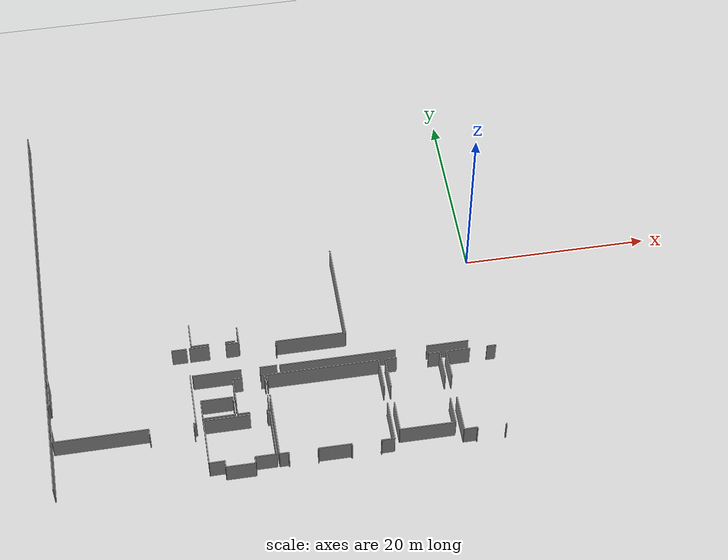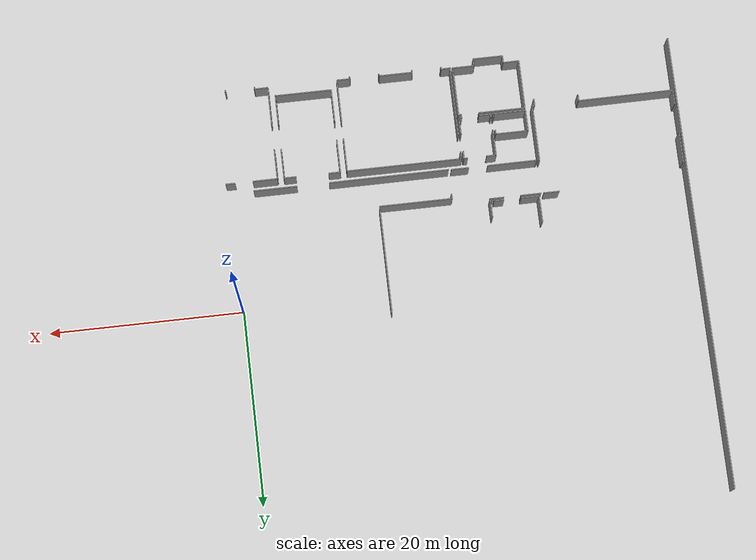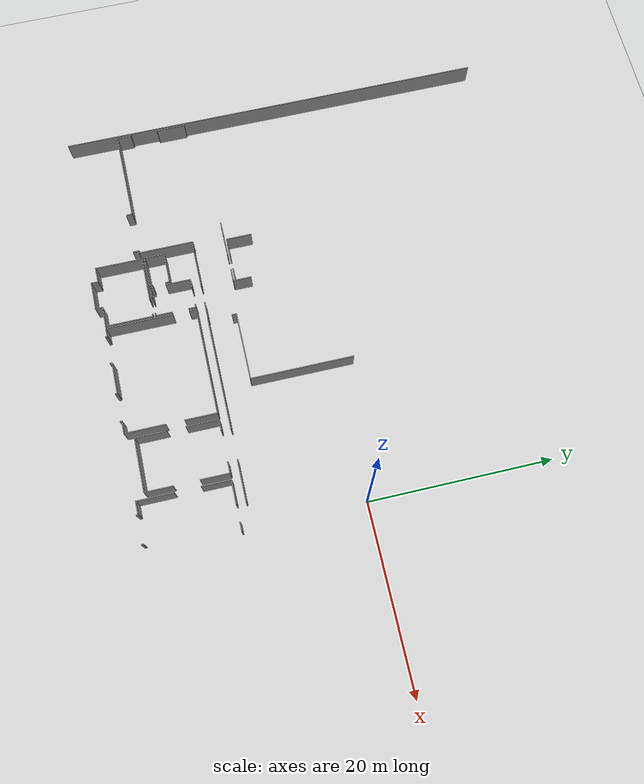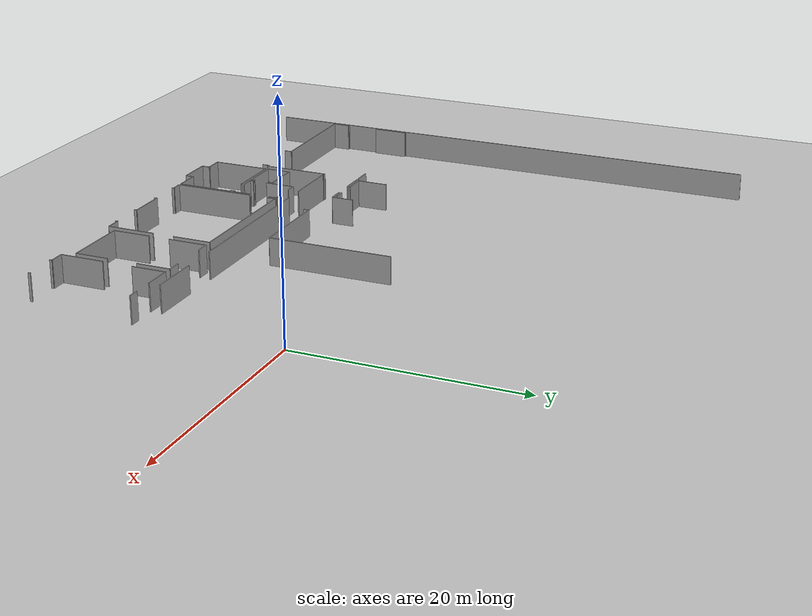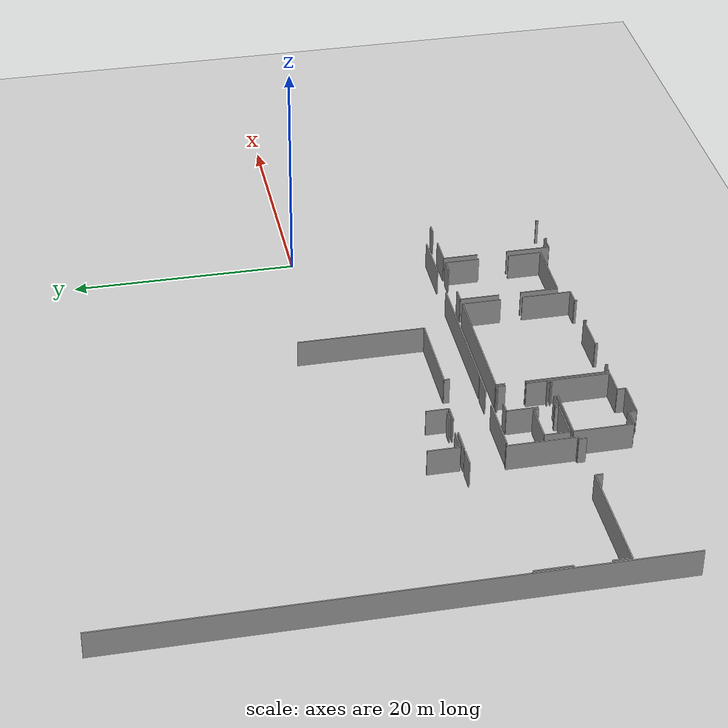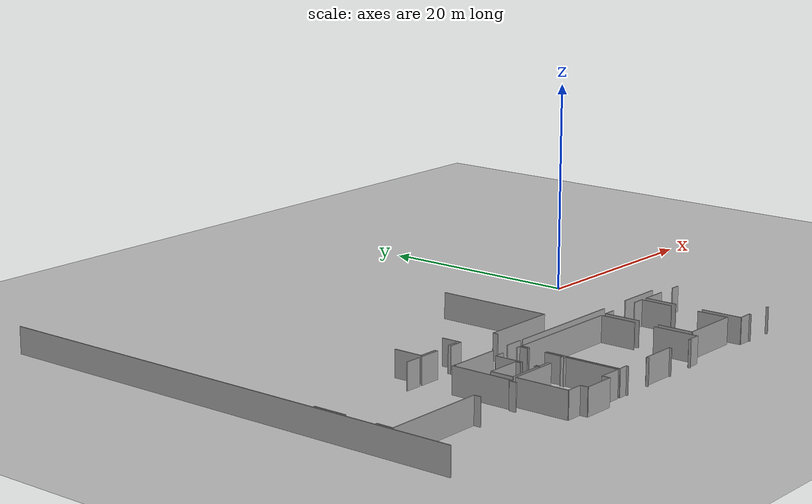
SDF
<sdf version="1.6">
 <world name="default">
  <model name="ground_plane">
   <static>1</static>
   <link name="link">
    <collision name="collision">
     <geometry><plane><normal>0 0 1</normal><size>100 100</size></plane></geometry>
     <surface><friction><ode><mu>100</mu><mu2>50</mu2></ode></friction></surface>
    </collision>
    <visual name="visual">
     <cast_shadows>0</cast_shadows>
     <geometry><plane><normal>0 0 1</normal><size>100 100</size></plane></geometry>
     <material>
      <script><uri>file://media/materials/scripts/gazebo.material</uri><name>Gazebo/Grey</name></script>
     </material>
    </visual>
   </link>
  </model>
  <model name="50045229">
   <static>1</static>
   <link name="Wall_150">
    <collision name="Wall_150_Collision">
     <geometry><box><size>1.54526647121 0.1 2.5</size></box></geometry>
     <pose>0.772633235604 0 1.25 0 0 0</pose>
    </collision>
    <visual name="Wall_150_Visual">
     <pose>0.772633235604 0 1.25 0 0 0</pose>
     <geometry><box><size>1.54526647121 0.1 2.5</size></box></geometry>
     <material>
      <script><uri>file://media/materials/scripts/gazebo.material</uri><name>Gazebo/Grey</name></script>
      <ambient>1 1 1 1</ambient>
     </material>
    </visual>
    <pose>0.24153117821 -41.7352676135 0 0 0 1.57079632679</pose>
   </link>
   <link name="Wall_151">
    <collision name="Wall_151_Collision">
     <geometry><box><size>0.214243105002 0.1 2.5</size></box></geometry>
     <pose>0.107121552501 0 1.25 0 0 0</pose>
    </collision>
    <visual name="Wall_151_Visual">
     <pose>0.107121552501 0 1.25 0 0 0</pose>
     <geometry><box><size>0.214243105002 0.1 2.5</size></box></geometry>
     <material>
      <script><uri>file://media/materials/scripts/gazebo.material</uri><name>Gazebo/Grey</name></script>
      <ambient>1 1 1 1</ambient>
     </material>
    </visual>
    <pose>0.24153117821 -40.1900011423 0 0 0 3.14159265359</pose>
   </link>
   <link name="Wall_152">
    <collision name="Wall_152_Collision">
     <geometry><box><size>0.210308545609 0.1 2.5</size></box></geometry>
     <pose>0.105154272805 0 1.25 0 0 0</pose>
    </collision>
    <visual name="Wall_152_Visual">
     <pose>0.105154272805 0 1.25 0 0 0</pose>
     <geometry><box><size>0.210308545609 0.1 2.5</size></box></geometry>
     <material>
      <script><uri>file://media/materials/scripts/gazebo.material</uri><name>Gazebo/Grey</name></script>
      <ambient>1 1 1 1</ambient>
     </material>
    </visual>
    <pose>0.0272880732082 -37.1182525479 0 0 0 0.0</pose>
   </link>
   <link name="Wall_153">
    <collision name="Wall_153_Collision">
     <geometry><box><size>3.14358603358 0.1 2.5</size></box></geometry>
     <pose>1.57179301679 0 1.25 0 0 0</pose>
    </collision>
    <visual name="Wall_153_Visual">
     <pose>1.57179301679 0 1.25 0 0 0</pose>
     <geometry><box><size>3.14358603358 0.1 2.5</size></box></geometry>
     <material>
      <script><uri>file://media/materials/scripts/gazebo.material</uri><name>Gazebo/Grey</name></script>
      <ambient>1 1 1 1</ambient>
     </material>
    </visual>
    <pose>0.237596618817 -37.1182525479 0 0 0 1.57079632679</pose>
   </link>
   <link name="Wall_154">
    <collision name="Wall_154_Collision">
     <geometry><box><size>0.223508357766 0.1 2.5</size></box></geometry>
     <pose>0.111754178883 0 1.25 0 0 0</pose>
    </collision>
    <visual name="Wall_154_Visual">
     <pose>0.111754178883 0 1.25 0 0 0</pose>
     <geometry><box><size>0.223508357766 0.1 2.5</size></box></geometry>
     <material>
      <script><uri>file://media/materials/scripts/gazebo.material</uri><name>Gazebo/Grey</name></script>
      <ambient>1 1 1 1</ambient>
     </material>
    </visual>
    <pose>0.237596618817 -33.9746665144 0 0 0 3.14159265359</pose>
   </link>
   <link name="Wall_167">
    <collision name="Wall_167_Collision">
     <geometry><box><size>1.60022338144 0.1 2.5</size></box></geometry>
     <pose>0.800111690718 0 1.25 0 0 0</pose>
    </collision>
    <visual name="Wall_167_Visual">
     <pose>0.800111690718 0 1.25 0 0 0</pose>
     <geometry><box><size>1.60022338144 0.1 2.5</size></box></geometry>
     <material>
      <script><uri>file://media/materials/scripts/gazebo.material</uri><name>Gazebo/Grey</name></script>
      <ambient>1 1 1 1</ambient>
     </material>
    </visual>
    <pose>13.3948901496 -32.2849636371 0 0 0 0.0</pose>
   </link>
   <link name="Wall_168">
    <collision name="Wall_168_Collision">
     <geometry><box><size>5.98598789171 0.1 2.5</size></box></geometry>
     <pose>2.99299394586 0 1.25 0 0 0</pose>
    </collision>
    <visual name="Wall_168_Visual">
     <pose>2.99299394586 0 1.25 0 0 0</pose>
     <geometry><box><size>5.98598789171 0.1 2.5</size></box></geometry>
     <material>
      <script><uri>file://media/materials/scripts/gazebo.material</uri><name>Gazebo/Grey</name></script>
      <ambient>1 1 1 1</ambient>
     </material>
    </visual>
    <pose>14.9951135311 -35.7021919303 0 0 0 -1.57079632679</pose>
   </link>
   <link name="Wall_169">
    <collision name="Wall_169_Collision">
     <geometry><box><size>0.253842541472 0.1 2.5</size></box></geometry>
     <pose>0.126921270736 0 1.25 0 0 0</pose>
    </collision>
    <visual name="Wall_169_Visual">
     <pose>0.126921270736 0 1.25 0 0 0</pose>
     <geometry><box><size>0.253842541472 0.1 2.5</size></box></geometry>
     <material>
      <script><uri>file://media/materials/scripts/gazebo.material</uri><name>Gazebo/Grey</name></script>
      <ambient>1 1 1 1</ambient>
     </material>
    </visual>
    <pose>14.9951135311 -41.6881798221 0 0 0 3.14159265359</pose>
   </link>
   <link name="Wall_170">
    <collision name="Wall_170_Collision">
     <geometry><box><size>0.673317341253 0.1 2.5</size></box></geometry>
     <pose>0.336658670627 0 1.25 0 0 0</pose>
    </collision>
    <visual name="Wall_170_Visual">
     <pose>0.336658670627 0 1.25 0 0 0</pose>
     <geometry><box><size>0.673317341253 0.1 2.5</size></box></geometry>
     <material>
      <script><uri>file://media/materials/scripts/gazebo.material</uri><name>Gazebo/Grey</name></script>
      <ambient>1 1 1 1</ambient>
     </material>
    </visual>
    <pose>14.7412709896 -41.6881798221 0 0 0 -1.57079632679</pose>
   </link>
   <link name="Wall_171">
    <collision name="Wall_171_Collision">
     <geometry><box><size>0.684359491807 0.1 2.5</size></box></geometry>
     <pose>0.342179745904 0 1.25 0 0 0</pose>
    </collision>
    <visual name="Wall_171_Visual">
     <pose>0.342179745904 0 1.25 0 0 0</pose>
     <geometry><box><size>0.684359491807 0.1 2.5</size></box></geometry>
     <material>
      <script><uri>file://media/materials/scripts/gazebo.material</uri><name>Gazebo/Grey</name></script>
      <ambient>1 1 1 1</ambient>
     </material>
    </visual>
    <pose>10.1280635622 -42.3614971633 0 0 0 1.57079632679</pose>
   </link>
   <link name="Wall_172">
    <collision name="Wall_172_Collision">
     <geometry><box><size>9.88670327608 0.1 2.5</size></box></geometry>
     <pose>4.94335163804 0 1.25 0 0 0</pose>
    </collision>
    <visual name="Wall_172_Visual">
     <pose>4.94335163804 0 1.25 0 0 0</pose>
     <geometry><box><size>9.88670327608 0.1 2.5</size></box></geometry>
     <material>
      <script><uri>file://media/materials/scripts/gazebo.material</uri><name>Gazebo/Grey</name></script>
      <ambient>1 1 1 1</ambient>
     </material>
    </visual>
    <pose>10.1280635622 -41.6771376715 0 0 0 -3.13571301148</pose>
   </link>
   <link name="Wall_173">
    <collision name="Wall_173_Collision">
     <geometry><box><size>0.0863064641003 0.1 2.5</size></box></geometry>
     <pose>0.0431532320502 0 1.25 0 0 0</pose>
    </collision>
    <visual name="Wall_173_Visual">
     <pose>0.0431532320502 0 1.25 0 0 0</pose>
     <geometry><box><size>0.0863064641003 0.1 2.5</size></box></geometry>
     <material>
      <script><uri>file://media/materials/scripts/gazebo.material</uri><name>Gazebo/Grey</name></script>
      <ambient>1 1 1 1</ambient>
     </material>
    </visual>
    <pose>15.2729441927 -35.8147710975 0 0 0 1.57079632679</pose>
   </link>
   <link name="Wall_174">
    <collision name="Wall_174_Collision">
     <geometry><box><size>2.10765462184 0.1 2.5</size></box></geometry>
     <pose>1.05382731092 0 1.25 0 0 0</pose>
    </collision>
    <visual name="Wall_174_Visual">
     <pose>1.05382731092 0 1.25 0 0 0</pose>
     <geometry><box><size>2.10765462184 0.1 2.5</size></box></geometry>
     <material>
      <script><uri>file://media/materials/scripts/gazebo.material</uri><name>Gazebo/Grey</name></script>
      <ambient>1 1 1 1</ambient>
     </material>
    </visual>
    <pose>15.2729441927 -32.2806483139 0 0 0 0.0</pose>
   </link>
   <link name="Wall_175">
    <collision name="Wall_175_Collision">
     <geometry><box><size>1.41276066456 0.1 2.5</size></box></geometry>
     <pose>0.70638033228 0 1.25 0 0 0</pose>
    </collision>
    <visual name="Wall_175_Visual">
     <pose>0.70638033228 0 1.25 0 0 0</pose>
     <geometry><box><size>1.41276066456 0.1 2.5</size></box></geometry>
     <material>
      <script><uri>file://media/materials/scripts/gazebo.material</uri><name>Gazebo/Grey</name></script>
      <ambient>1 1 1 1</ambient>
     </material>
    </visual>
    <pose>19.1449313991 -32.2806483139 0 0 0 0.0</pose>
   </link>
   <link name="Wall_176">
    <collision name="Wall_176_Collision">
     <geometry><box><size>1.98416022541 0.1 2.5</size></box></geometry>
     <pose>0.992080112706 0 1.25 0 0 0</pose>
    </collision>
    <visual name="Wall_176_Visual">
     <pose>0.992080112706 0 1.25 0 0 0</pose>
     <geometry><box><size>1.98416022541 0.1 2.5</size></box></geometry>
     <material>
      <script><uri>file://media/materials/scripts/gazebo.material</uri><name>Gazebo/Grey</name></script>
      <ambient>1 1 1 1</ambient>
     </material>
    </visual>
    <pose>20.5576920636 -32.2806483139 0 0 0 1.57079632679</pose>
   </link>
   <link name="Wall_180">
    <collision name="Wall_180_Collision">
     <geometry><box><size>1.8246201881 0.1 2.5</size></box></geometry>
     <pose>0.912310094049 0 1.25 0 0 0</pose>
    </collision>
    <visual name="Wall_180_Visual">
     <pose>0.912310094049 0 1.25 0 0 0</pose>
     <geometry><box><size>1.8246201881 0.1 2.5</size></box></geometry>
     <material>
      <script><uri>file://media/materials/scripts/gazebo.material</uri><name>Gazebo/Grey</name></script>
      <ambient>1 1 1 1</ambient>
     </material>
    </visual>
    <pose>24.1518486083 -35.8052520022 0 0 0 3.14159265359</pose>
   </link>
   <link name="Wall_181">
    <collision name="Wall_181_Collision">
     <geometry><box><size>5.09704020029 0.1 2.5</size></box></geometry>
     <pose>2.54852010014 0 1.25 0 0 0</pose>
    </collision>
    <visual name="Wall_181_Visual">
     <pose>2.54852010014 0 1.25 0 0 0</pose>
     <geometry><box><size>5.09704020029 0.1 2.5</size></box></geometry>
     <material>
      <script><uri>file://media/materials/scripts/gazebo.material</uri><name>Gazebo/Grey</name></script>
      <ambient>1 1 1 1</ambient>
     </material>
    </visual>
    <pose>20.3699755042 -35.8052520022 0 0 0 -3.13972507938</pose>
   </link>
   <link name="Wall_182">
    <collision name="Wall_182_Collision">
     <geometry><box><size>2.77018365508 0.1 2.5</size></box></geometry>
     <pose>1.38509182754 0 1.25 0 0 0</pose>
    </collision>
    <visual name="Wall_182_Visual">
     <pose>1.38509182754 0 1.25 0 0 0</pose>
     <geometry><box><size>2.77018365508 0.1 2.5</size></box></geometry>
     <material>
      <script><uri>file://media/materials/scripts/gazebo.material</uri><name>Gazebo/Grey</name></script>
      <ambient>1 1 1 1</ambient>
     </material>
    </visual>
    <pose>15.5248829151 -32.0311210956 0 0 0 1.57079632679</pose>
   </link>
   <link name="Wall_185">
    <collision name="Wall_185_Collision">
     <geometry><box><size>1.02108162307 0.1 2.5</size></box></geometry>
     <pose>0.510540811535 0 1.25 0 0 0</pose>
    </collision>
    <visual name="Wall_185_Visual">
     <pose>0.510540811535 0 1.25 0 0 0</pose>
     <geometry><box><size>1.02108162307 0.1 2.5</size></box></geometry>
     <material>
      <script><uri>file://media/materials/scripts/gazebo.material</uri><name>Gazebo/Grey</name></script>
      <ambient>1 1 1 1</ambient>
     </material>
    </visual>
    <pose>20.1713437155 -32.0240135044 0 0 0 3.14159265359</pose>
   </link>
   <link name="Wall_186">
    <collision name="Wall_186_Collision">
     <geometry><box><size>1.85953712105 0.1 2.5</size></box></geometry>
     <pose>0.929768560524 0 1.25 0 0 0</pose>
    </collision>
    <visual name="Wall_186_Visual">
     <pose>0.929768560524 0 1.25 0 0 0</pose>
     <geometry><box><size>1.85953712105 0.1 2.5</size></box></geometry>
     <material>
      <script><uri>file://media/materials/scripts/gazebo.material</uri><name>Gazebo/Grey</name></script>
      <ambient>1 1 1 1</ambient>
     </material>
    </visual>
    <pose>17.3844064527 -32.0240135044 0 0 0 -3.13777040751</pose>
   </link>
   <link name="Wall_187">
    <collision name="Wall_187_Collision">
     <geometry><box><size>0.33113759535 0.1 2.5</size></box></geometry>
     <pose>0.165568797675 0 1.25 0 0 0</pose>
    </collision>
    <visual name="Wall_187_Visual">
     <pose>0.165568797675 0 1.25 0 0 0</pose>
     <geometry><box><size>0.33113759535 0.1 2.5</size></box></geometry>
     <material>
      <script><uri>file://media/materials/scripts/gazebo.material</uri><name>Gazebo/Grey</name></script>
      <ambient>1 1 1 1</ambient>
     </material>
    </visual>
    <pose>19.3766896394 -41.2467476424 0 0 0 1.57079632679</pose>
   </link>
   <link name="Wall_188">
    <collision name="Wall_188_Collision">
     <geometry><box><size>2.71598827247 0.1 2.5</size></box></geometry>
     <pose>1.35799413624 0 1.25 0 0 0</pose>
    </collision>
    <visual name="Wall_188_Visual">
     <pose>1.35799413624 0 1.25 0 0 0</pose>
     <geometry><box><size>2.71598827247 0.1 2.5</size></box></geometry>
     <material>
      <script><uri>file://media/materials/scripts/gazebo.material</uri><name>Gazebo/Grey</name></script>
      <ambient>1 1 1 1</ambient>
     </material>
    </visual>
    <pose>19.3766896394 -39.5480333549 0 0 0 1.57079632679</pose>
   </link>
   <link name="Wall_189">
    <collision name="Wall_189_Collision">
     <geometry><box><size>0.982751399307 0.1 2.5</size></box></geometry>
     <pose>0.491375699654 0 1.25 0 0 0</pose>
    </collision>
    <visual name="Wall_189_Visual">
     <pose>0.491375699654 0 1.25 0 0 0</pose>
     <geometry><box><size>0.982751399307 0.1 2.5</size></box></geometry>
     <material>
      <script><uri>file://media/materials/scripts/gazebo.material</uri><name>Gazebo/Grey</name></script>
      <ambient>1 1 1 1</ambient>
     </material>
    </visual>
    <pose>19.3766896394 -36.8320450824 0 0 0 0.0</pose>
   </link>
   <link name="Wall_190">
    <collision name="Wall_190_Collision">
     <geometry><box><size>0.383936843976 0.1 2.5</size></box></geometry>
     <pose>0.191968421988 0 1.25 0 0 0</pose>
    </collision>
    <visual name="Wall_190_Visual">
     <pose>0.191968421988 0 1.25 0 0 0</pose>
     <geometry><box><size>0.383936843976 0.1 2.5</size></box></geometry>
     <material>
      <script><uri>file://media/materials/scripts/gazebo.material</uri><name>Gazebo/Grey</name></script>
      <ambient>1 1 1 1</ambient>
     </material>
    </visual>
    <pose>22.3172016398 -36.8320450824 0 0 0 0.0</pose>
   </link>
   <link name="Wall_191">
    <collision name="Wall_191_Collision">
     <geometry><box><size>0.782088870274 0.1 2.5</size></box></geometry>
     <pose>0.391044435137 0 1.25 0 0 0</pose>
    </collision>
    <visual name="Wall_191_Visual">
     <pose>0.391044435137 0 1.25 0 0 0</pose>
     <geometry><box><size>0.782088870274 0.1 2.5</size></box></geometry>
     <material>
      <script><uri>file://media/materials/scripts/gazebo.material</uri><name>Gazebo/Grey</name></script>
      <ambient>1 1 1 1</ambient>
     </material>
    </visual>
    <pose>22.7011384838 -36.8320450824 0 0 0 -1.57079632679</pose>
   </link>
   <link name="Wall_192">
    <collision name="Wall_192_Collision">
     <geometry><box><size>1.81497417152 0.1 2.5</size></box></geometry>
     <pose>0.907487085761 0 1.25 0 0 0</pose>
    </collision>
    <visual name="Wall_192_Visual">
     <pose>0.907487085761 0 1.25 0 0 0</pose>
     <geometry><box><size>1.81497417152 0.1 2.5</size></box></geometry>
     <material>
      <script><uri>file://media/materials/scripts/gazebo.material</uri><name>Gazebo/Grey</name></script>
      <ambient>1 1 1 1</ambient>
     </material>
    </visual>
    <pose>22.7011384838 -39.4157813908 0 0 0 -1.57079632679</pose>
   </link>
   <link name="Wall_193">
    <collision name="Wall_193_Collision">
     <geometry><box><size>0.323014634023 0.1 2.5</size></box></geometry>
     <pose>0.161507317011 0 1.25 0 0 0</pose>
    </collision>
    <visual name="Wall_193_Visual">
     <pose>0.161507317011 0 1.25 0 0 0</pose>
     <geometry><box><size>0.323014634023 0.1 2.5</size></box></geometry>
     <material>
      <script><uri>file://media/materials/scripts/gazebo.material</uri><name>Gazebo/Grey</name></script>
      <ambient>1 1 1 1</ambient>
     </material>
    </visual>
    <pose>22.7011384838 -41.2307555623 0 0 0 3.14159265359</pose>
   </link>
   <link name="Wall_194">
    <collision name="Wall_194_Collision">
     <geometry><box><size>1.24228141521 0.1 2.5</size></box></geometry>
     <pose>0.621140707606 0 1.25 0 0 0</pose>
    </collision>
    <visual name="Wall_194_Visual">
     <pose>0.621140707606 0 1.25 0 0 0</pose>
     <geometry><box><size>1.24228141521 0.1 2.5</size></box></geometry>
     <material>
      <script><uri>file://media/materials/scripts/gazebo.material</uri><name>Gazebo/Grey</name></script>
      <ambient>1 1 1 1</ambient>
     </material>
    </visual>
    <pose>20.6188681161 -41.2307555623 0 0 0 -3.1287191439</pose>
   </link>
   <link name="Wall_195">
    <collision name="Wall_195_Collision">
     <geometry><box><size>5.1403114648 0.1 2.5</size></box></geometry>
     <pose>2.5701557324 0 1.25 0 0 0</pose>
    </collision>
    <visual name="Wall_195_Visual">
     <pose>2.5701557324 0 1.25 0 0 0</pose>
     <geometry><box><size>5.1403114648 0.1 2.5</size></box></geometry>
     <material>
      <script><uri>file://media/materials/scripts/gazebo.material</uri><name>Gazebo/Grey</name></script>
      <ambient>1 1 1 1</ambient>
     </material>
    </visual>
    <pose>15.7782177715 -46.6629859498 0 0 0 1.57079632679</pose>
   </link>
   <link name="Wall_196">
    <collision name="Wall_196_Collision">
     <geometry><box><size>4.83075048547 0.1 2.5</size></box></geometry>
     <pose>2.41537524274 0 1.25 0 0 0</pose>
    </collision>
    <visual name="Wall_196_Visual">
     <pose>2.41537524274 0 1.25 0 0 0</pose>
     <geometry><box><size>4.83075048547 0.1 2.5</size></box></geometry>
     <material>
      <script><uri>file://media/materials/scripts/gazebo.material</uri><name>Gazebo/Grey</name></script>
      <ambient>1 1 1 1</ambient>
     </material>
    </visual>
    <pose>15.7782177715 -41.522674485 0 0 0 0.0</pose>
   </link>
   <link name="Wall_197">
    <collision name="Wall_197_Collision">
     <geometry><box><size>0.306514868827 0.1 2.5</size></box></geometry>
     <pose>0.153257434413 0 1.25 0 0 0</pose>
    </collision>
    <visual name="Wall_197_Visual">
     <pose>0.153257434413 0 1.25 0 0 0</pose>
     <geometry><box><size>0.306514868827 0.1 2.5</size></box></geometry>
     <material>
      <script><uri>file://media/materials/scripts/gazebo.material</uri><name>Gazebo/Grey</name></script>
      <ambient>1 1 1 1</ambient>
     </material>
    </visual>
    <pose>22.4003350722 -41.522674485 0 0 0 0.0</pose>
   </link>
   <link name="Wall_198">
    <collision name="Wall_198_Collision">
     <geometry><box><size>5.12101943165 0.1 2.5</size></box></geometry>
     <pose>2.56050971582 0 1.25 0 0 0</pose>
    </collision>
    <visual name="Wall_198_Visual">
     <pose>2.56050971582 0 1.25 0 0 0</pose>
     <geometry><box><size>5.12101943165 0.1 2.5</size></box></geometry>
     <material>
      <script><uri>file://media/materials/scripts/gazebo.material</uri><name>Gazebo/Grey</name></script>
      <ambient>1 1 1 1</ambient>
     </material>
    </visual>
    <pose>22.706849941 -41.522674485 0 0 0 -1.57079632679</pose>
   </link>
   <link name="Wall_199">
    <collision name="Wall_199_Collision">
     <geometry><box><size>2.2374950818 0.1 2.5</size></box></geometry>
     <pose>1.1187475409 0 1.25 0 0 0</pose>
    </collision>
    <visual name="Wall_199_Visual">
     <pose>1.1187475409 0 1.25 0 0 0</pose>
     <geometry><box><size>2.2374950818 0.1 2.5</size></box></geometry>
     <material>
      <script><uri>file://media/materials/scripts/gazebo.material</uri><name>Gazebo/Grey</name></script>
      <ambient>1 1 1 1</ambient>
     </material>
    </visual>
    <pose>22.706849941 -46.6436939167 0 0 0 3.14159265359</pose>
   </link>
   <link name="Wall_200">
    <collision name="Wall_200_Collision">
     <geometry><box><size>0.739443323307 0.1 2.5</size></box></geometry>
     <pose>0.369721661653 0 1.25 0 0 0</pose>
    </collision>
    <visual name="Wall_200_Visual">
     <pose>0.369721661653 0 1.25 0 0 0</pose>
     <geometry><box><size>0.739443323307 0.1 2.5</size></box></geometry>
     <material>
      <script><uri>file://media/materials/scripts/gazebo.material</uri><name>Gazebo/Grey</name></script>
      <ambient>1 1 1 1</ambient>
     </material>
    </visual>
    <pose>20.4693548592 -46.6436939167 0 0 0 -1.57079632679</pose>
   </link>
   <link name="Wall_201">
    <collision name="Wall_201_Collision">
     <geometry><box><size>3.06819479877 0.1 2.5</size></box></geometry>
     <pose>1.53409739938 0 1.25 0 0 0</pose>
    </collision>
    <visual name="Wall_201_Visual">
     <pose>1.53409739938 0 1.25 0 0 0</pose>
     <geometry><box><size>3.06819479877 0.1 2.5</size></box></geometry>
     <material>
      <script><uri>file://media/materials/scripts/gazebo.material</uri><name>Gazebo/Grey</name></script>
      <ambient>1 1 1 1</ambient>
     </material>
    </visual>
    <pose>20.4693548592 -47.38313724 0 0 0 3.14159265359</pose>
   </link>
   <link name="Wall_202">
    <collision name="Wall_202_Collision">
     <geometry><box><size>0.739443323307 0.1 2.5</size></box></geometry>
     <pose>0.369721661653 0 1.25 0 0 0</pose>
    </collision>
    <visual name="Wall_202_Visual">
     <pose>0.369721661653 0 1.25 0 0 0</pose>
     <geometry><box><size>0.739443323307 0.1 2.5</size></box></geometry>
     <material>
      <script><uri>file://media/materials/scripts/gazebo.material</uri><name>Gazebo/Grey</name></script>
      <ambient>1 1 1 1</ambient>
     </material>
    </visual>
    <pose>17.4011600604 -47.38313724 0 0 0 1.57079632679</pose>
   </link>
   <link name="Wall_203">
    <collision name="Wall_203_Collision">
     <geometry><box><size>1.62305694775 0.1 2.5</size></box></geometry>
     <pose>0.811528473875 0 1.25 0 0 0</pose>
    </collision>
    <visual name="Wall_203_Visual">
     <pose>0.811528473875 0 1.25 0 0 0</pose>
     <geometry><box><size>1.62305694775 0.1 2.5</size></box></geometry>
     <material>
      <script><uri>file://media/materials/scripts/gazebo.material</uri><name>Gazebo/Grey</name></script>
      <ambient>1 1 1 1</ambient>
     </material>
    </visual>
    <pose>17.4011600604 -46.6436939167 0 0 0 -3.12970614063</pose>
   </link>
   <link name="Wall_204">
    <collision name="Wall_204_Collision">
     <geometry><box><size>2.19484953483 0.1 2.5</size></box></geometry>
     <pose>1.09742476742 0 1.25 0 0 0</pose>
    </collision>
    <visual name="Wall_204_Visual">
     <pose>1.09742476742 0 1.25 0 0 0</pose>
     <geometry><box><size>2.19484953483 0.1 2.5</size></box></geometry>
     <material>
      <script><uri>file://media/materials/scripts/gazebo.material</uri><name>Gazebo/Grey</name></script>
      <ambient>1 1 1 1</ambient>
     </material>
    </visual>
    <pose>15.7591795809 -41.2631204864 0 0 0 1.57079632679</pose>
   </link>
   <link name="Wall_205">
    <collision name="Wall_205_Collision">
     <geometry><box><size>3.36227138306 0.1 2.5</size></box></geometry>
     <pose>1.68113569153 0 1.25 0 0 0</pose>
    </collision>
    <visual name="Wall_205_Visual">
     <pose>1.68113569153 0 1.25 0 0 0</pose>
     <geometry><box><size>3.36227138306 0.1 2.5</size></box></geometry>
     <material>
      <script><uri>file://media/materials/scripts/gazebo.material</uri><name>Gazebo/Grey</name></script>
      <ambient>1 1 1 1</ambient>
     </material>
    </visual>
    <pose>15.7591795809 -39.0682709515 0 0 0 0.0</pose>
   </link>
   <link name="Wall_206">
    <collision name="Wall_206_Collision">
     <geometry><box><size>0.470243308076 0.1 2.5</size></box></geometry>
     <pose>0.235121654038 0 1.25 0 0 0</pose>
    </collision>
    <visual name="Wall_206_Visual">
     <pose>0.235121654038 0 1.25 0 0 0</pose>
     <geometry><box><size>0.470243308076 0.1 2.5</size></box></geometry>
     <material>
      <script><uri>file://media/materials/scripts/gazebo.material</uri><name>Gazebo/Grey</name></script>
      <ambient>1 1 1 1</ambient>
     </material>
    </visual>
    <pose>19.121450964 -39.0682709515 0 0 0 -1.57079632679</pose>
   </link>
   <link name="Wall_207">
    <collision name="Wall_207_Collision">
     <geometry><box><size>0.342179745904 0.1 2.5</size></box></geometry>
     <pose>0.171089872952 0 1.25 0 0 0</pose>
    </collision>
    <visual name="Wall_207_Visual">
     <pose>0.171089872952 0 1.25 0 0 0</pose>
     <geometry><box><size>0.342179745904 0.1 2.5</size></box></geometry>
     <material>
      <script><uri>file://media/materials/scripts/gazebo.material</uri><name>Gazebo/Grey</name></script>
      <ambient>1 1 1 1</ambient>
     </material>
    </visual>
    <pose>19.121450964 -40.9012679435 0 0 0 -1.57079632679</pose>
   </link>
   <link name="Wall_208">
    <collision name="Wall_208_Collision">
     <geometry><box><size>3.36232893577 0.1 2.5</size></box></geometry>
     <pose>1.68116446788 0 1.25 0 0 0</pose>
    </collision>
    <visual name="Wall_208_Visual">
     <pose>1.68116446788 0 1.25 0 0 0</pose>
     <geometry><box><size>3.36232893577 0.1 2.5</size></box></geometry>
     <material>
      <script><uri>file://media/materials/scripts/gazebo.material</uri><name>Gazebo/Grey</name></script>
      <ambient>1 1 1 1</ambient>
     </material>
    </visual>
    <pose>19.121450964 -41.2434476894 0 0 0 -3.13574167661</pose>
   </link>
   <link name="Wall_209">
    <collision name="Wall_209_Collision">
     <geometry><box><size>7.27906179797 0.1 2.5</size></box></geometry>
     <pose>3.63953089898 0 1.25 0 0 0</pose>
    </collision>
    <visual name="Wall_209_Visual">
     <pose>3.63953089898 0 1.25 0 0 0</pose>
     <geometry><box><size>7.27906179797 0.1 2.5</size></box></geometry>
     <material>
      <script><uri>file://media/materials/scripts/gazebo.material</uri><name>Gazebo/Grey</name></script>
      <ambient>1 1 1 1</ambient>
     </material>
    </visual>
    <pose>22.9619616952 -46.6756780769 0 0 0 1.57079632679</pose>
   </link>
   <link name="Wall_210">
    <collision name="Wall_210_Collision">
     <geometry><box><size>0.784500374418 0.1 2.5</size></box></geometry>
     <pose>0.392250187209 0 1.25 0 0 0</pose>
    </collision>
    <visual name="Wall_210_Visual">
     <pose>0.392250187209 0 1.25 0 0 0</pose>
     <geometry><box><size>0.784500374418 0.1 2.5</size></box></geometry>
     <material>
      <script><uri>file://media/materials/scripts/gazebo.material</uri><name>Gazebo/Grey</name></script>
      <ambient>1 1 1 1</ambient>
     </material>
    </visual>
    <pose>22.9619616952 -37.6216223077 0 0 0 1.57079632679</pose>
   </link>
   <link name="Wall_211">
    <collision name="Wall_211_Collision">
     <geometry><box><size>11.8798309409 0.1 2.5</size></box></geometry>
     <pose>5.93991547043 0 1.25 0 0 0</pose>
    </collision>
    <visual name="Wall_211_Visual">
     <pose>5.93991547043 0 1.25 0 0 0</pose>
     <geometry><box><size>11.8798309409 0.1 2.5</size></box></geometry>
     <material>
      <script><uri>file://media/materials/scripts/gazebo.material</uri><name>Gazebo/Grey</name></script>
      <ambient>1 1 1 1</ambient>
     </material>
    </visual>
    <pose>22.9619616952 -36.8371219333 0 0 0 0.0</pose>
   </link>
   <link name="Wall_212">
    <collision name="Wall_212_Collision">
     <geometry><box><size>3.47155059716 0.1 2.5</size></box></geometry>
     <pose>1.73577529858 0 1.25 0 0 0</pose>
    </collision>
    <visual name="Wall_212_Visual">
     <pose>1.73577529858 0 1.25 0 0 0</pose>
     <geometry><box><size>3.47155059716 0.1 2.5</size></box></geometry>
     <material>
      <script><uri>file://media/materials/scripts/gazebo.material</uri><name>Gazebo/Grey</name></script>
      <ambient>1 1 1 1</ambient>
     </material>
    </visual>
    <pose>34.841792636 -36.8371219333 0 0 0 -1.57079632679</pose>
   </link>
   <link name="Wall_213">
    <collision name="Wall_213_Collision">
     <geometry><box><size>4.38157610834 0.1 2.5</size></box></geometry>
     <pose>2.19078805417 0 1.25 0 0 0</pose>
    </collision>
    <visual name="Wall_213_Visual">
     <pose>2.19078805417 0 1.25 0 0 0</pose>
     <geometry><box><size>4.38157610834 0.1 2.5</size></box></geometry>
     <material>
      <script><uri>file://media/materials/scripts/gazebo.material</uri><name>Gazebo/Grey</name></script>
      <ambient>1 1 1 1</ambient>
     </material>
    </visual>
    <pose>34.841792636 -42.2842021094 0 0 0 -1.57079632679</pose>
   </link>
   <link name="Wall_214">
    <collision name="Wall_214_Collision">
     <geometry><box><size>1.36021525848 0.1 2.5</size></box></geometry>
     <pose>0.680107629238 0 1.25 0 0 0</pose>
    </collision>
    <visual name="Wall_214_Visual">
     <pose>0.680107629238 0 1.25 0 0 0</pose>
     <geometry><box><size>1.36021525848 0.1 2.5</size></box></geometry>
     <material>
      <script><uri>file://media/materials/scripts/gazebo.material</uri><name>Gazebo/Grey</name></script>
      <ambient>1 1 1 1</ambient>
     </material>
    </visual>
    <pose>34.841792636 -46.6657782178 0 0 0 3.14159265359</pose>
   </link>
   <link name="Wall_215">
    <collision name="Wall_215_Collision">
     <geometry><box><size>0.209673939255 0.1 2.5</size></box></geometry>
     <pose>0.104836969628 0 1.25 0 0 0</pose>
    </collision>
    <visual name="Wall_215_Visual">
     <pose>0.104836969628 0 1.25 0 0 0</pose>
     <geometry><box><size>0.209673939255 0.1 2.5</size></box></geometry>
     <material>
      <script><uri>file://media/materials/scripts/gazebo.material</uri><name>Gazebo/Grey</name></script>
      <ambient>1 1 1 1</ambient>
     </material>
    </visual>
    <pose>33.4815773776 -46.6657782178 0 0 0 -1.57079632679</pose>
   </link>
   <link name="Wall_216">
    <collision name="Wall_216_Collision">
     <geometry><box><size>0.23632740611 0.1 2.5</size></box></geometry>
     <pose>0.118163703055 0 1.25 0 0 0</pose>
    </collision>
    <visual name="Wall_216_Visual">
     <pose>0.118163703055 0 1.25 0 0 0</pose>
     <geometry><box><size>0.23632740611 0.1 2.5</size></box></geometry>
     <material>
      <script><uri>file://media/materials/scripts/gazebo.material</uri><name>Gazebo/Grey</name></script>
      <ambient>1 1 1 1</ambient>
     </material>
    </visual>
    <pose>30.4112249172 -46.875452157 0 0 0 1.57079632679</pose>
   </link>
   <link name="Wall_217">
    <collision name="Wall_217_Collision">
     <geometry><box><size>3.45428930434 0.1 2.5</size></box></geometry>
     <pose>1.72714465217 0 1.25 0 0 0</pose>
    </collision>
    <visual name="Wall_217_Visual">
     <pose>1.72714465217 0 1.25 0 0 0</pose>
     <geometry><box><size>3.45428930434 0.1 2.5</size></box></geometry>
     <material>
      <script><uri>file://media/materials/scripts/gazebo.material</uri><name>Gazebo/Grey</name></script>
      <ambient>1 1 1 1</ambient>
     </material>
    </visual>
    <pose>30.4112249172 -46.6391247509 0 0 0 3.14159265359</pose>
   </link>
   <link name="Wall_218">
    <collision name="Wall_218_Collision">
     <geometry><box><size>0.239500437878 0.1 2.5</size></box></geometry>
     <pose>0.119750218939 0 1.25 0 0 0</pose>
    </collision>
    <visual name="Wall_218_Visual">
     <pose>0.119750218939 0 1.25 0 0 0</pose>
     <geometry><box><size>0.239500437878 0.1 2.5</size></box></geometry>
     <material>
      <script><uri>file://media/materials/scripts/gazebo.material</uri><name>Gazebo/Grey</name></script>
      <ambient>1 1 1 1</ambient>
     </material>
    </visual>
    <pose>26.9569356128 -46.6391247509 0 0 0 -1.57079632679</pose>
   </link>
   <link name="Wall_219">
    <collision name="Wall_219_Collision">
     <geometry><box><size>0.224904491744 0.1 2.5</size></box></geometry>
     <pose>0.112452245872 0 1.25 0 0 0</pose>
    </collision>
    <visual name="Wall_219_Visual">
     <pose>0.112452245872 0 1.25 0 0 0</pose>
     <geometry><box><size>0.224904491744 0.1 2.5</size></box></geometry>
     <material>
      <script><uri>file://media/materials/scripts/gazebo.material</uri><name>Gazebo/Grey</name></script>
      <ambient>1 1 1 1</ambient>
     </material>
    </visual>
    <pose>23.9164096511 -46.8786251888 0 0 0 1.57079632679</pose>
   </link>
   <link name="Wall_220">
    <collision name="Wall_220_Collision">
     <geometry><box><size>0.95470049079 0.1 2.5</size></box></geometry>
     <pose>0.477350245395 0 1.25 0 0 0</pose>
    </collision>
    <visual name="Wall_220_Visual">
     <pose>0.477350245395 0 1.25 0 0 0</pose>
     <geometry><box><size>0.95470049079 0.1 2.5</size></box></geometry>
     <material>
      <script><uri>file://media/materials/scripts/gazebo.material</uri><name>Gazebo/Grey</name></script>
      <ambient>1 1 1 1</ambient>
     </material>
    </visual>
    <pose>23.9164096511 -46.6537206971 0 0 0 -3.11859139163</pose>
   </link>
   <link name="Wall_266">
    <collision name="Wall_266_Collision">
     <geometry><box><size>3.40085544936 0.1 2.5</size></box></geometry>
     <pose>1.70042772468 0 1.25 0 0 0</pose>
    </collision>
    <visual name="Wall_266_Visual">
     <pose>1.70042772468 0 1.25 0 0 0</pose>
     <geometry><box><size>3.40085544936 0.1 2.5</size></box></geometry>
     <material>
      <script><uri>file://media/materials/scripts/gazebo.material</uri><name>Gazebo/Grey</name></script>
      <ambient>1 1 1 1</ambient>
     </material>
    </visual>
    <pose>35.5495056417 -45.6856921651 0 0 0 1.57079632679</pose>
   </link>
   <link name="Wall_267">
    <collision name="Wall_267_Collision">
     <geometry><box><size>3.50429628501 0.1 2.5</size></box></geometry>
     <pose>1.75214814251 0 1.25 0 0 0</pose>
    </collision>
    <visual name="Wall_267_Visual">
     <pose>1.75214814251 0 1.25 0 0 0</pose>
     <geometry><box><size>3.50429628501 0.1 2.5</size></box></geometry>
     <material>
      <script><uri>file://media/materials/scripts/gazebo.material</uri><name>Gazebo/Grey</name></script>
      <ambient>1 1 1 1</ambient>
     </material>
    </visual>
    <pose>35.5495056417 -40.3143839876 0 0 0 1.57079632679</pose>
   </link>
   <link name="Wall_268">
    <collision name="Wall_268_Collision">
     <geometry><box><size>1.19889832337 0.1 2.5</size></box></geometry>
     <pose>0.599449161685 0 1.25 0 0 0</pose>
    </collision>
    <visual name="Wall_268_Visual">
     <pose>0.599449161685 0 1.25 0 0 0</pose>
     <geometry><box><size>1.19889832337 0.1 2.5</size></box></geometry>
     <material>
      <script><uri>file://media/materials/scripts/gazebo.material</uri><name>Gazebo/Grey</name></script>
      <ambient>1 1 1 1</ambient>
     </material>
    </visual>
    <pose>35.5495056417 -36.8100877026 0 0 0 0.0</pose>
   </link>
   <link name="Wall_269">
    <collision name="Wall_269_Collision">
     <geometry><box><size>1.24065542144 0.1 2.5</size></box></geometry>
     <pose>0.620327710721 0 1.25 0 0 0</pose>
    </collision>
    <visual name="Wall_269_Visual">
     <pose>0.620327710721 0 1.25 0 0 0</pose>
     <geometry><box><size>1.24065542144 0.1 2.5</size></box></geometry>
     <material>
      <script><uri>file://media/materials/scripts/gazebo.material</uri><name>Gazebo/Grey</name></script>
      <ambient>1 1 1 1</ambient>
     </material>
    </visual>
    <pose>40.1344096257 -36.8100877026 0 0 0 0.0</pose>
   </link>
   <link name="Wall_270">
    <collision name="Wall_270_Collision">
     <geometry><box><size>3.11337877115 0.1 2.5</size></box></geometry>
     <pose>1.55668938557 0 1.25 0 0 0</pose>
    </collision>
    <visual name="Wall_270_Visual">
     <pose>1.55668938557 0 1.25 0 0 0</pose>
     <geometry><box><size>3.11337877115 0.1 2.5</size></box></geometry>
     <material>
      <script><uri>file://media/materials/scripts/gazebo.material</uri><name>Gazebo/Grey</name></script>
      <ambient>1 1 1 1</ambient>
     </material>
    </visual>
    <pose>41.3750650472 -36.8100877026 0 0 0 -1.57079632679</pose>
   </link>
   <link name="Wall_271">
    <collision name="Wall_271_Collision">
     <geometry><box><size>3.00105344655 0.1 2.5</size></box></geometry>
     <pose>1.50052672327 0 1.25 0 0 0</pose>
    </collision>
    <visual name="Wall_271_Visual">
     <pose>1.50052672327 0 1.25 0 0 0</pose>
     <geometry><box><size>3.00105344655 0.1 2.5</size></box></geometry>
     <material>
      <script><uri>file://media/materials/scripts/gazebo.material</uri><name>Gazebo/Grey</name></script>
      <ambient>1 1 1 1</ambient>
     </material>
    </visual>
    <pose>41.3750650472 -42.6903501758 0 0 0 -1.57079632679</pose>
   </link>
   <link name="Wall_272">
    <collision name="Wall_272_Collision">
     <geometry><box><size>5.8255622053 0.1 2.5</size></box></geometry>
     <pose>2.91278110265 0 1.25 0 0 0</pose>
    </collision>
    <visual name="Wall_272_Visual">
     <pose>2.91278110265 0 1.25 0 0 0</pose>
     <geometry><box><size>5.8255622053 0.1 2.5</size></box></geometry>
     <material>
      <script><uri>file://media/materials/scripts/gazebo.material</uri><name>Gazebo/Grey</name></script>
      <ambient>1 1 1 1</ambient>
     </material>
    </visual>
    <pose>41.3750650472 -45.6914036223 0 0 0 3.14061224039</pose>
   </link>
   <link name="Wall_273">
    <collision name="Wall_273_Collision">
     <geometry><box><size>3.97669725469 0.1 2.5</size></box></geometry>
     <pose>1.98834862735 0 1.25 0 0 0</pose>
    </collision>
    <visual name="Wall_273_Visual">
     <pose>1.98834862735 0 1.25 0 0 0</pose>
     <geometry><box><size>3.97669725469 0.1 2.5</size></box></geometry>
     <material>
      <script><uri>file://media/materials/scripts/gazebo.material</uri><name>Gazebo/Grey</name></script>
      <ambient>1 1 1 1</ambient>
     </material>
    </visual>
    <pose>42.0705936108 -46.6702204622 0 0 0 1.57079632679</pose>
   </link>
   <link name="Wall_274">
    <collision name="Wall_274_Collision">
     <geometry><box><size>3.1283554811 0.1 2.5</size></box></geometry>
     <pose>1.56417774055 0 1.25 0 0 0</pose>
    </collision>
    <visual name="Wall_274_Visual">
     <pose>1.56417774055 0 1.25 0 0 0</pose>
     <geometry><box><size>3.1283554811 0.1 2.5</size></box></geometry>
     <material>
      <script><uri>file://media/materials/scripts/gazebo.material</uri><name>Gazebo/Grey</name></script>
      <ambient>1 1 1 1</ambient>
     </material>
    </visual>
    <pose>42.0705936108 -39.9494853342 0 0 0 1.57079632679</pose>
   </link>
   <link name="Wall_275">
    <collision name="Wall_275_Collision">
     <geometry><box><size>2.5358869893 0.1 2.5</size></box></geometry>
     <pose>1.26794349465 0 1.25 0 0 0</pose>
    </collision>
    <visual name="Wall_275_Visual">
     <pose>1.26794349465 0 1.25 0 0 0</pose>
     <geometry><box><size>2.5358869893 0.1 2.5</size></box></geometry>
     <material>
      <script><uri>file://media/materials/scripts/gazebo.material</uri><name>Gazebo/Grey</name></script>
      <ambient>1 1 1 1</ambient>
     </material>
    </visual>
    <pose>42.0705936108 -36.8211298532 0 0 0 0.0</pose>
   </link>
   <link name="Wall_276">
    <collision name="Wall_276_Collision">
     <geometry><box><size>0.977293784665 0.1 2.5</size></box></geometry>
     <pose>0.488646892333 0 1.25 0 0 0</pose>
    </collision>
    <visual name="Wall_276_Visual">
     <pose>0.488646892333 0 1.25 0 0 0</pose>
     <geometry><box><size>0.977293784665 0.1 2.5</size></box></geometry>
     <material>
      <script><uri>file://media/materials/scripts/gazebo.material</uri><name>Gazebo/Grey</name></script>
      <ambient>1 1 1 1</ambient>
     </material>
    </visual>
    <pose>46.4423967813 -36.8211298532 0 0 0 0.0</pose>
   </link>
   <link name="Wall_299">
    <collision name="Wall_299_Collision">
     <geometry><box><size>0.234296665778 0.1 2.5</size></box></geometry>
     <pose>0.117148332889 0 1.25 0 0 0</pose>
    </collision>
    <visual name="Wall_299_Visual">
     <pose>0.117148332889 0 1.25 0 0 0</pose>
     <geometry><box><size>0.234296665778 0.1 2.5</size></box></geometry>
     <material>
      <script><uri>file://media/materials/scripts/gazebo.material</uri><name>Gazebo/Grey</name></script>
      <ambient>1 1 1 1</ambient>
     </material>
    </visual>
    <pose>46.4879615175 -46.6318902385 0 0 0 -1.57079632679</pose>
   </link>
   <link name="Wall_300">
    <collision name="Wall_300_Collision">
     <geometry><box><size>0.219446877102 0.1 2.5</size></box></geometry>
     <pose>0.109723438551 0 1.25 0 0 0</pose>
    </collision>
    <visual name="Wall_300_Visual">
     <pose>0.109723438551 0 1.25 0 0 0</pose>
     <geometry><box><size>0.219446877102 0.1 2.5</size></box></geometry>
     <material>
      <script><uri>file://media/materials/scripts/gazebo.material</uri><name>Gazebo/Grey</name></script>
      <ambient>1 1 1 1</ambient>
     </material>
    </visual>
    <pose>43.4580969425 -46.8661869043 0 0 0 1.57079632679</pose>
   </link>
   <link name="Wall_301">
    <collision name="Wall_301_Collision">
     <geometry><box><size>1.38770199476 0.1 2.5</size></box></geometry>
     <pose>0.693850997381 0 1.25 0 0 0</pose>
    </collision>
    <visual name="Wall_301_Visual">
     <pose>0.693850997381 0 1.25 0 0 0</pose>
     <geometry><box><size>1.38770199476 0.1 2.5</size></box></geometry>
     <material>
      <script><uri>file://media/materials/scripts/gazebo.material</uri><name>Gazebo/Grey</name></script>
      <ambient>1 1 1 1</ambient>
     </material>
    </visual>
    <pose>43.4580969425 -46.6467400272 0 0 0 -3.12467147331</pose>
   </link>
   <link name="Wall_387">
    <collision name="Wall_387_Collision">
     <geometry><box><size>0.49511987714 0.1 2.5</size></box></geometry>
     <pose>0.24755993857 0 1.25 0 0 0</pose>
    </collision>
    <visual name="Wall_387_Visual">
     <pose>0.24755993857 0 1.25 0 0 0</pose>
     <geometry><box><size>0.49511987714 0.1 2.5</size></box></geometry>
     <material>
      <script><uri>file://media/materials/scripts/gazebo.material</uri><name>Gazebo/Grey</name></script>
      <ambient>1 1 1 1</ambient>
     </material>
    </visual>
    <pose>24.4438944523 -33.2342078209 0 0 0 1.57079632679</pose>
   </link>
   <link name="Wall_388">
    <collision name="Wall_388_Collision">
     <geometry><box><size>7.48759344579 0.1 2.5</size></box></geometry>
     <pose>3.74379672289 0 1.25 0 0 0</pose>
    </collision>
    <visual name="Wall_388_Visual">
     <pose>3.74379672289 0 1.25 0 0 0</pose>
     <geometry><box><size>7.48759344579 0.1 2.5</size></box></geometry>
     <material>
      <script><uri>file://media/materials/scripts/gazebo.material</uri><name>Gazebo/Grey</name></script>
      <ambient>1 1 1 1</ambient>
     </material>
    </visual>
    <pose>24.4438944523 -32.7390879437 0 0 0 0.0</pose>
   </link>
   <link name="Wall_389">
    <collision name="Wall_389_Collision">
     <geometry><box><size>11.1811293455 0.1 2.5</size></box></geometry>
     <pose>5.59056467273 0 1.25 0 0 0</pose>
    </collision>
    <visual name="Wall_389_Visual">
     <pose>5.59056467273 0 1.25 0 0 0</pose>
     <geometry><box><size>11.1811293455 0.1 2.5</size></box></geometry>
     <material>
      <script><uri>file://media/materials/scripts/gazebo.material</uri><name>Gazebo/Grey</name></script>
      <ambient>1 1 1 1</ambient>
     </material>
    </visual>
    <pose>31.9314878981 -32.7390879437 0 0 0 1.57079632679</pose>
   </link>
   <link name="Wall_438">
    <collision name="Wall_438_Collision">
     <geometry><box><size>4.48032085697 0.1 2.5</size></box></geometry>
     <pose>2.24016042849 0 1.25 0 0 0</pose>
    </collision>
    <visual name="Wall_438_Visual">
     <pose>2.24016042849 0 1.25 0 0 0</pose>
     <geometry><box><size>4.48032085697 0.1 2.5</size></box></geometry>
     <material>
      <script><uri>file://media/materials/scripts/gazebo.material</uri><name>Gazebo/Grey</name></script>
      <ambient>1 1 1 1</ambient>
     </material>
    </visual>
    <pose>44.6147304827 -35.8052520022 0 0 0 3.14159265359</pose>
   </link>
   <link name="Wall_439">
    <collision name="Wall_439_Collision">
     <geometry><box><size>12.3602556039 0.1 2.5</size></box></geometry>
     <pose>6.18012780193 0 1.25 0 0 0</pose>
    </collision>
    <visual name="Wall_439_Visual">
     <pose>6.18012780193 0 1.25 0 0 0</pose>
     <geometry><box><size>12.3602556039 0.1 2.5</size></box></geometry>
     <material>
      <script><uri>file://media/materials/scripts/gazebo.material</uri><name>Gazebo/Grey</name></script>
      <ambient>1 1 1 1</ambient>
     </material>
    </visual>
    <pose>36.8041224029 -35.8052520022 0 0 0 -3.13947734124</pose>
   </link>
   <link name="Wall_442">
    <collision name="Wall_442_Collision">
     <geometry><box><size>47.38313724 0.1 2.5</size></box></geometry>
     <pose>23.69156862 0 1.25 0 0 0</pose>
    </collision>
    <visual name="Wall_442_Visual">
     <pose>23.69156862 0 1.25 0 0 0</pose>
     <geometry><box><size>47.38313724 0.1 2.5</size></box></geometry>
     <material>
      <script><uri>file://media/materials/scripts/gazebo.material</uri><name>Gazebo/Grey</name></script>
      <ambient>1 1 1 1</ambient>
     </material>
    </visual>
    <pose>0.0 -47.38313724 0 0 0 1.57079632679</pose>
   </link>
   <pose>-46.95 23.68313724 0 0 0 0</pose>
  </model>
 </world>
</sdf>
